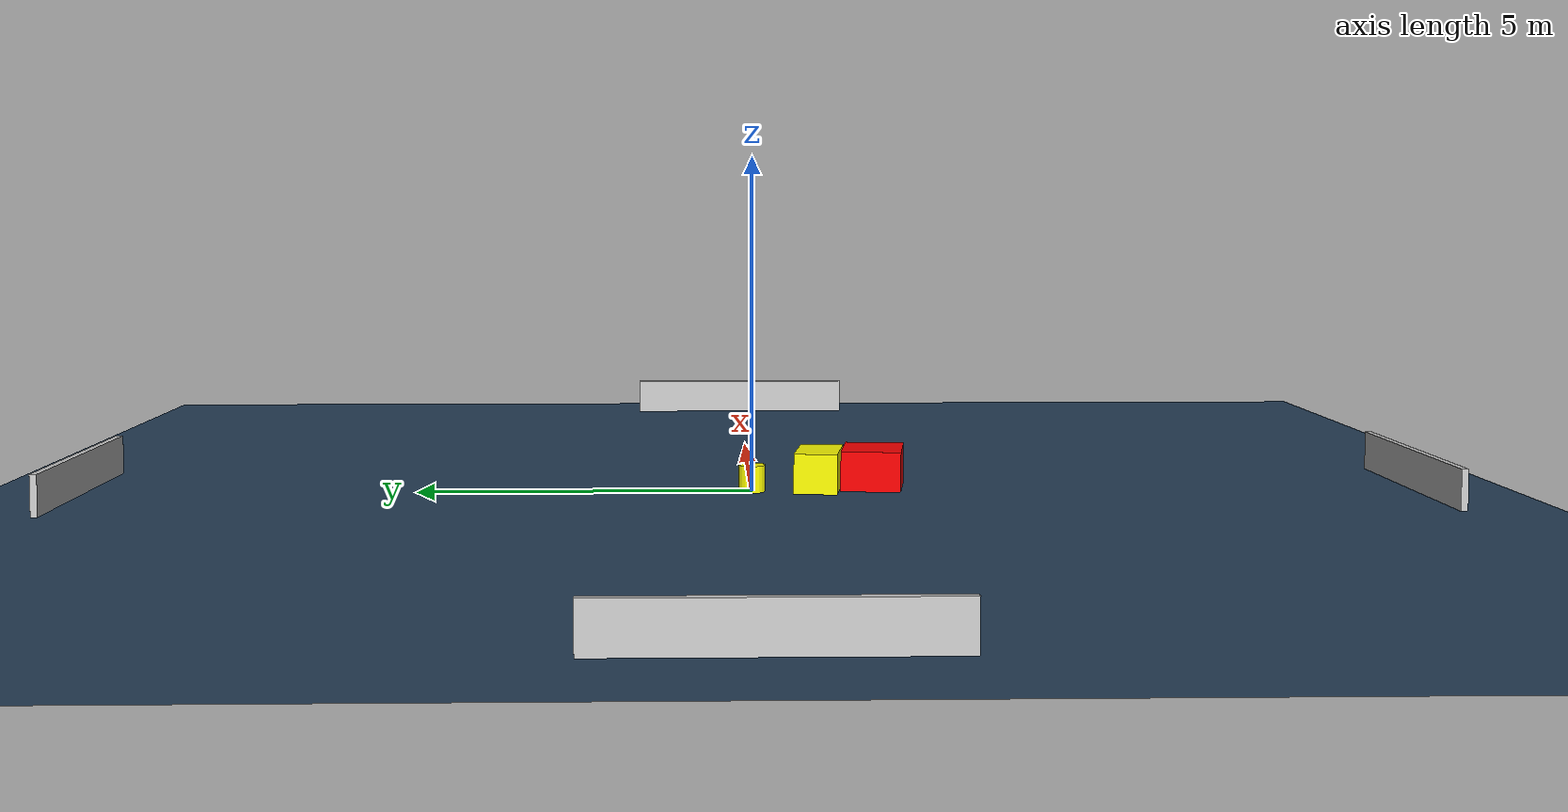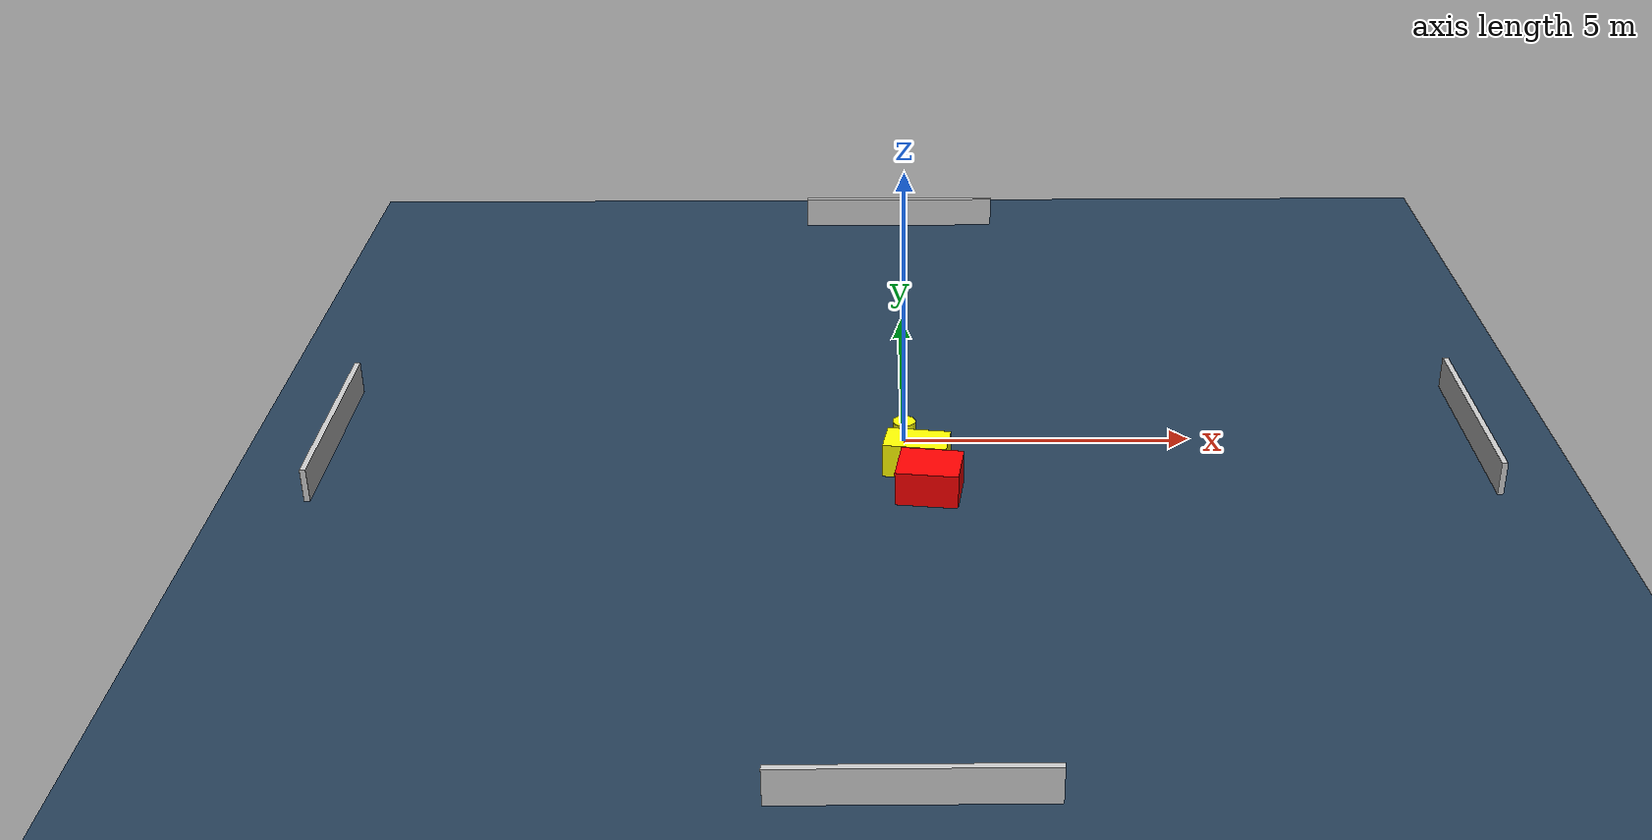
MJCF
<?xml version="1.0" ?>
<mujoco model="generated_environment">
  <option timestep="0.01" integrator="RK4" cone="elliptic"/>
  <default>
    <geom density="1"/>
  </default>
  <asset>
    <texture builtin="gradient" height="3072" name="skybox" rgb1="0.3 0.5 0.7" rgb2="0 0 0" type="skybox" width="512"/>
    <texture builtin="checker" height="300" name="groundplane" rgb1="0.2 0.3 0.4" rgb2="0.1 0.2 0.3" type="2d" width="300"/>
    <material name="groundplane" reflectance="0.2" texrepeat="5 5" texture="groundplane"/>
  </asset>
  <worldbody>
    <light dir="0 0 -1" directional="true" pos="0 0 1.5"/>
    <geom condim="3" friction="0.5 0.005 0.001" material="groundplane" name="floor" pos="0 0 0" size="0 0 0.05" type="plane"/>
    <body name="walls">
      <geom name="wall_1" condim="4" pos="-10.0 0.0 0.3" rgba="0.800000011920929 0.800000011920929 0.800000011920929 1.0" size="0.05 2.0 0.3" type="box"/>
      <geom name="wall_2" condim="4" pos="10.0 0.0 0.3" rgba="0.800000011920929 0.800000011920929 0.800000011920929 1.0" size="0.05 2.0 0.3" type="box"/>
      <geom name="wall_3" condim="4" pos="0.0 -10.0 0.3" rgba="0.800000011920929 0.800000011920929 0.800000011920929 1.0" size="2.0 0.05 0.3" type="box"/>
      <geom name="wall_4" condim="4" pos="0.0 10.0 0.3" rgba="0.800000011920929 0.800000011920929 0.800000011920929 1.0" size="2.0 0.05 0.3" type="box"/>
    </body>
    <body name="robot">
      <joint name="joint_x" type="slide" pos="0 0 0" axis="1 0 0"/>
      <joint name="joint_y" type="slide" pos="0 0 0" axis="0 1 0"/>
      <geom name="robot" type="cylinder" pos="0.0 0.0 0.2" size="0.2 0.2 0.0" mass="5.0" friction="1.0 0.005 0.0001" condim="4" rgba="1.0 1.0 0.0 1.0"/>
    </body>
    <body name="obstacle_1_movable">
      <geom name="obstacle_1_movable" condim="4" pos="0.20462572659357958 -1.0138110227179984 0.3" euler="0 0 171.31014076058662" friction="0.0 0.005 0.001" rgba="1.0 1.0 0.0 1.0" size="0.5462357156941184 0.3238664741006206 0.3" type="box" mass="0.1"/>
      <joint type="free"/>
    </body>
    <body name="obstacle_2_static">
      <geom name="obstacle_2_static" condim="4" pos="0.40454686769481213 -1.8452871561749613 0.3" euler="0 0 172.0388345015878" friction="0.0 0.005 0.001" rgba="1.0 0.0 0.0 1.0" size="0.5322118177002093 0.44944465765605035 0.3" type="box"/>
    </body>
  </worldbody>
  <actuator>
    <motor name="actuator_x" joint="joint_x" gear="1" ctrlrange="-1 1"/>
    <motor name="actuator_y" joint="joint_y" gear="1" ctrlrange="-1 1"/>
  </actuator>
</mujoco>
